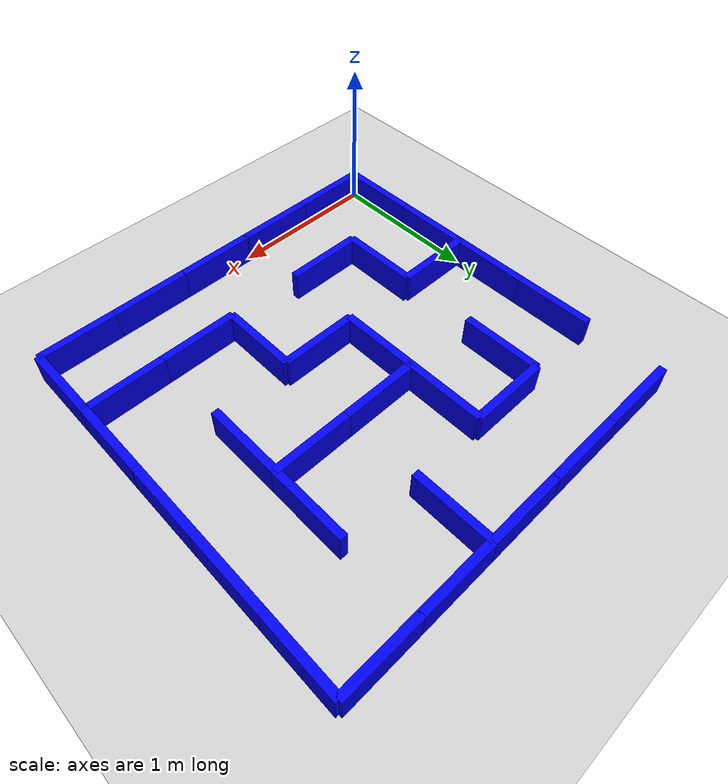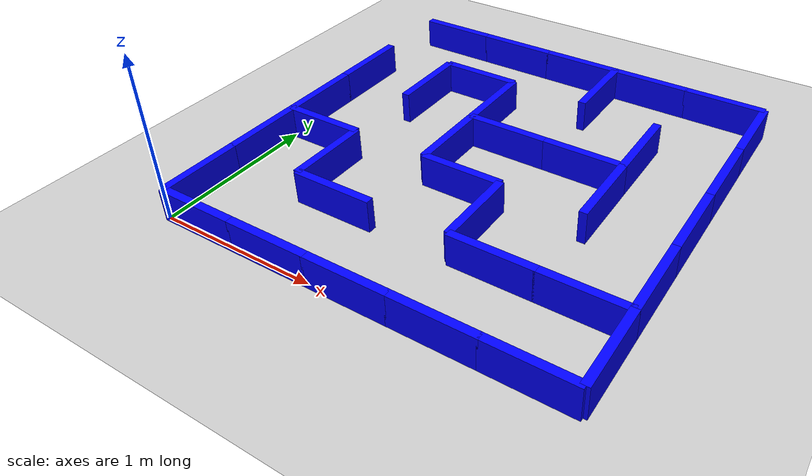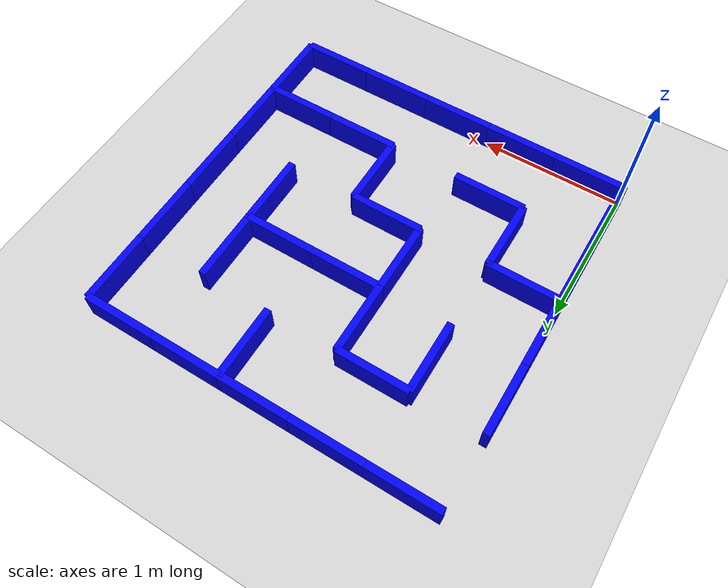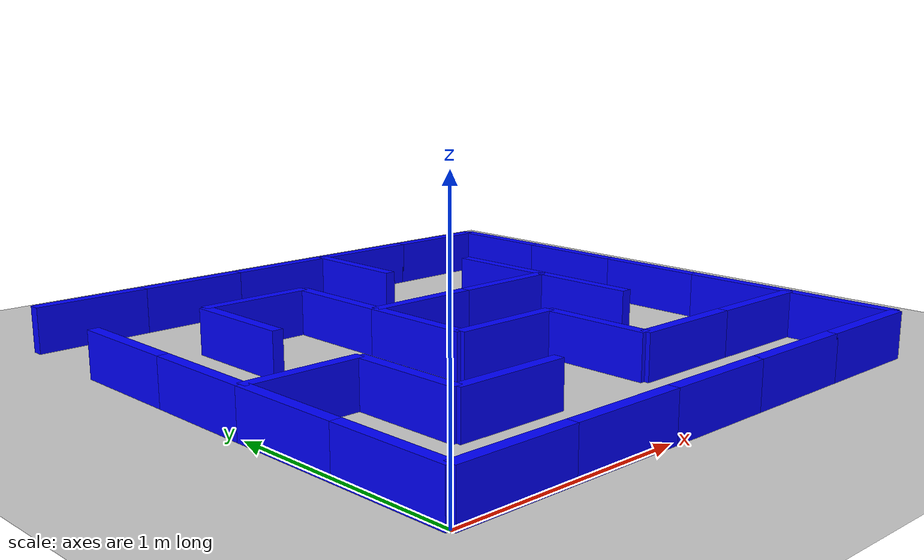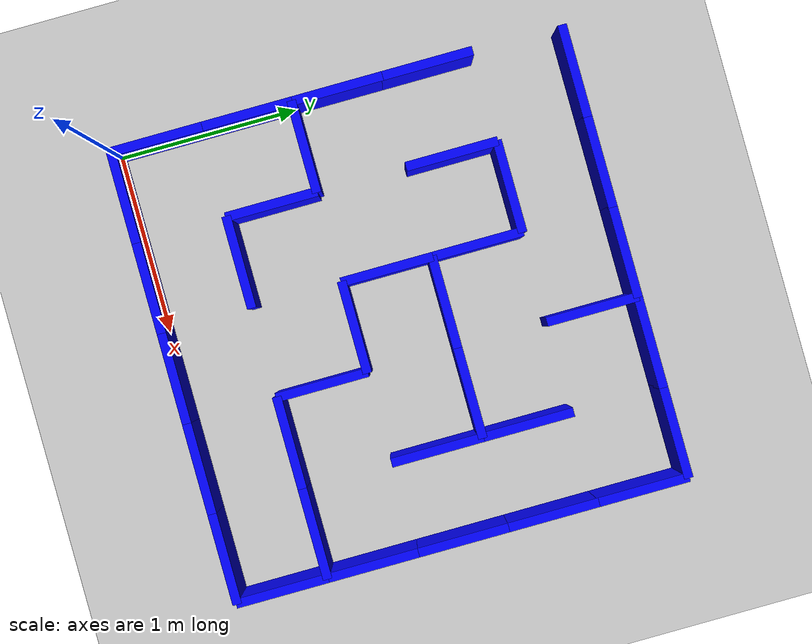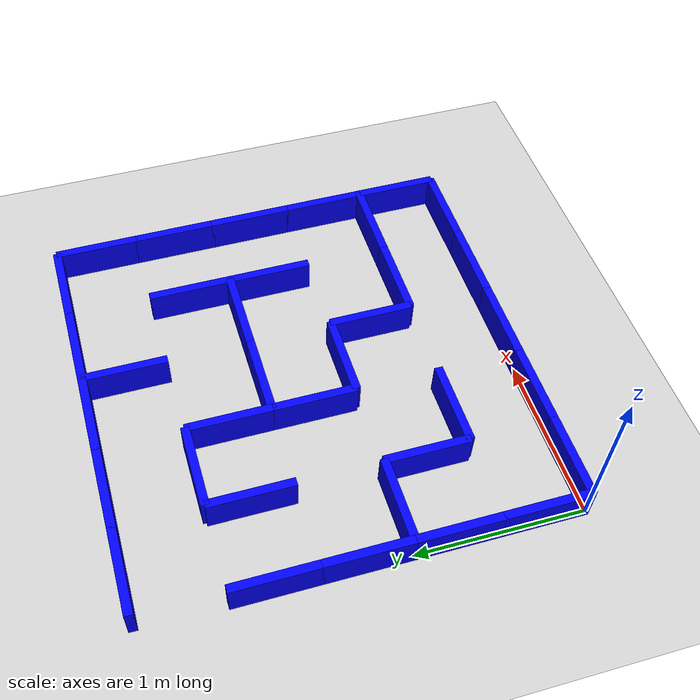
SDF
<?xml version="1.0" ?>
<sdf version="1.7">
  <world name="maze_world">
    <include><uri>model://sun</uri></include>
    <include><uri>model://ground_plane</uri></include>

    <model name='wall_0'>
      <pose>0.25 0.0 0.1 0 0 0</pose>
      <link name='link'>
        <collision name='collision'>
          <geometry><box><size>0.51 0.05 0.2</size></box></geometry>
        </collision>
        <visual name='visual'>
          <geometry><box><size>0.51 0.05 0.2</size></box></geometry>
          <material><ambient>0 0 1 1</ambient><diffuse>0 0 1 1</diffuse></material>
        </visual>
      </link>
      <static>true</static>
    </model>
    <model name='wall_1'>
      <pose>0.0 0.25 0.1 0 0 0</pose>
      <link name='link'>
        <collision name='collision'>
          <geometry><box><size>0.05 0.51 0.2</size></box></geometry>
        </collision>
        <visual name='visual'>
          <geometry><box><size>0.05 0.51 0.2</size></box></geometry>
          <material><ambient>0 0 1 1</ambient><diffuse>0 0 1 1</diffuse></material>
        </visual>
      </link>
      <static>true</static>
    </model>
    <model name='wall_2'>
      <pose>0.75 0.0 0.1 0 0 0</pose>
      <link name='link'>
        <collision name='collision'>
          <geometry><box><size>0.51 0.05 0.2</size></box></geometry>
        </collision>
        <visual name='visual'>
          <geometry><box><size>0.51 0.05 0.2</size></box></geometry>
          <material><ambient>0 0 1 1</ambient><diffuse>0 0 1 1</diffuse></material>
        </visual>
      </link>
      <static>true</static>
    </model>
    <model name='wall_3'>
      <pose>0.75 0.5 0.1 0 0 0</pose>
      <link name='link'>
        <collision name='collision'>
          <geometry><box><size>0.51 0.05 0.2</size></box></geometry>
        </collision>
        <visual name='visual'>
          <geometry><box><size>0.51 0.05 0.2</size></box></geometry>
          <material><ambient>0 0 1 1</ambient><diffuse>0 0 1 1</diffuse></material>
        </visual>
      </link>
      <static>true</static>
    </model>
    <model name='wall_4'>
      <pose>1.25 0.0 0.1 0 0 0</pose>
      <link name='link'>
        <collision name='collision'>
          <geometry><box><size>0.51 0.05 0.2</size></box></geometry>
        </collision>
        <visual name='visual'>
          <geometry><box><size>0.51 0.05 0.2</size></box></geometry>
          <material><ambient>0 0 1 1</ambient><diffuse>0 0 1 1</diffuse></material>
        </visual>
      </link>
      <static>true</static>
    </model>
    <model name='wall_5'>
      <pose>1.75 0.0 0.1 0 0 0</pose>
      <link name='link'>
        <collision name='collision'>
          <geometry><box><size>0.51 0.05 0.2</size></box></geometry>
        </collision>
        <visual name='visual'>
          <geometry><box><size>0.51 0.05 0.2</size></box></geometry>
          <material><ambient>0 0 1 1</ambient><diffuse>0 0 1 1</diffuse></material>
        </visual>
      </link>
      <static>true</static>
    </model>
    <model name='wall_6'>
      <pose>1.75 0.5 0.1 0 0 0</pose>
      <link name='link'>
        <collision name='collision'>
          <geometry><box><size>0.51 0.05 0.2</size></box></geometry>
        </collision>
        <visual name='visual'>
          <geometry><box><size>0.51 0.05 0.2</size></box></geometry>
          <material><ambient>0 0 1 1</ambient><diffuse>0 0 1 1</diffuse></material>
        </visual>
      </link>
      <static>true</static>
    </model>
    <model name='wall_7'>
      <pose>2.25 0.0 0.1 0 0 0</pose>
      <link name='link'>
        <collision name='collision'>
          <geometry><box><size>0.51 0.05 0.2</size></box></geometry>
        </collision>
        <visual name='visual'>
          <geometry><box><size>0.51 0.05 0.2</size></box></geometry>
          <material><ambient>0 0 1 1</ambient><diffuse>0 0 1 1</diffuse></material>
        </visual>
      </link>
      <static>true</static>
    </model>
    <model name='wall_8'>
      <pose>2.25 0.5 0.1 0 0 0</pose>
      <link name='link'>
        <collision name='collision'>
          <geometry><box><size>0.51 0.05 0.2</size></box></geometry>
        </collision>
        <visual name='visual'>
          <geometry><box><size>0.51 0.05 0.2</size></box></geometry>
          <material><ambient>0 0 1 1</ambient><diffuse>0 0 1 1</diffuse></material>
        </visual>
      </link>
      <static>true</static>
    </model>
    <model name='wall_9'>
      <pose>2.5 0.25 0.1 0 0 0</pose>
      <link name='link'>
        <collision name='collision'>
          <geometry><box><size>0.05 0.51 0.2</size></box></geometry>
        </collision>
        <visual name='visual'>
          <geometry><box><size>0.05 0.51 0.2</size></box></geometry>
          <material><ambient>0 0 1 1</ambient><diffuse>0 0 1 1</diffuse></material>
        </visual>
      </link>
      <static>true</static>
    </model>
    <model name='wall_10'>
      <pose>0.25 1.0 0.1 0 0 0</pose>
      <link name='link'>
        <collision name='collision'>
          <geometry><box><size>0.51 0.05 0.2</size></box></geometry>
        </collision>
        <visual name='visual'>
          <geometry><box><size>0.51 0.05 0.2</size></box></geometry>
          <material><ambient>0 0 1 1</ambient><diffuse>0 0 1 1</diffuse></material>
        </visual>
      </link>
      <static>true</static>
    </model>
    <model name='wall_11'>
      <pose>0.0 0.75 0.1 0 0 0</pose>
      <link name='link'>
        <collision name='collision'>
          <geometry><box><size>0.05 0.51 0.2</size></box></geometry>
        </collision>
        <visual name='visual'>
          <geometry><box><size>0.05 0.51 0.2</size></box></geometry>
          <material><ambient>0 0 1 1</ambient><diffuse>0 0 1 1</diffuse></material>
        </visual>
      </link>
      <static>true</static>
    </model>
    <model name='wall_12'>
      <pose>0.5 0.75 0.1 0 0 0</pose>
      <link name='link'>
        <collision name='collision'>
          <geometry><box><size>0.05 0.51 0.2</size></box></geometry>
        </collision>
        <visual name='visual'>
          <geometry><box><size>0.05 0.51 0.2</size></box></geometry>
          <material><ambient>0 0 1 1</ambient><diffuse>0 0 1 1</diffuse></material>
        </visual>
      </link>
      <static>true</static>
    </model>
    <model name='wall_13'>
      <pose>0.75 0.5 0.1 0 0 0</pose>
      <link name='link'>
        <collision name='collision'>
          <geometry><box><size>0.51 0.05 0.2</size></box></geometry>
        </collision>
        <visual name='visual'>
          <geometry><box><size>0.51 0.05 0.2</size></box></geometry>
          <material><ambient>0 0 1 1</ambient><diffuse>0 0 1 1</diffuse></material>
        </visual>
      </link>
      <static>true</static>
    </model>
    <model name='wall_14'>
      <pose>0.5 0.75 0.1 0 0 0</pose>
      <link name='link'>
        <collision name='collision'>
          <geometry><box><size>0.05 0.51 0.2</size></box></geometry>
        </collision>
        <visual name='visual'>
          <geometry><box><size>0.05 0.51 0.2</size></box></geometry>
          <material><ambient>0 0 1 1</ambient><diffuse>0 0 1 1</diffuse></material>
        </visual>
      </link>
      <static>true</static>
    </model>
    <model name='wall_15'>
      <pose>1.25 1.0 0.1 0 0 0</pose>
      <link name='link'>
        <collision name='collision'>
          <geometry><box><size>0.51 0.05 0.2</size></box></geometry>
        </collision>
        <visual name='visual'>
          <geometry><box><size>0.51 0.05 0.2</size></box></geometry>
          <material><ambient>0 0 1 1</ambient><diffuse>0 0 1 1</diffuse></material>
        </visual>
      </link>
      <static>true</static>
    </model>
    <model name='wall_16'>
      <pose>1.5 0.75 0.1 0 0 0</pose>
      <link name='link'>
        <collision name='collision'>
          <geometry><box><size>0.05 0.51 0.2</size></box></geometry>
        </collision>
        <visual name='visual'>
          <geometry><box><size>0.05 0.51 0.2</size></box></geometry>
          <material><ambient>0 0 1 1</ambient><diffuse>0 0 1 1</diffuse></material>
        </visual>
      </link>
      <static>true</static>
    </model>
    <model name='wall_17'>
      <pose>1.75 0.5 0.1 0 0 0</pose>
      <link name='link'>
        <collision name='collision'>
          <geometry><box><size>0.51 0.05 0.2</size></box></geometry>
        </collision>
        <visual name='visual'>
          <geometry><box><size>0.51 0.05 0.2</size></box></geometry>
          <material><ambient>0 0 1 1</ambient><diffuse>0 0 1 1</diffuse></material>
        </visual>
      </link>
      <static>true</static>
    </model>
    <model name='wall_18'>
      <pose>1.5 0.75 0.1 0 0 0</pose>
      <link name='link'>
        <collision name='collision'>
          <geometry><box><size>0.05 0.51 0.2</size></box></geometry>
        </collision>
        <visual name='visual'>
          <geometry><box><size>0.05 0.51 0.2</size></box></geometry>
          <material><ambient>0 0 1 1</ambient><diffuse>0 0 1 1</diffuse></material>
        </visual>
      </link>
      <static>true</static>
    </model>
    <model name='wall_19'>
      <pose>2.25 0.5 0.1 0 0 0</pose>
      <link name='link'>
        <collision name='collision'>
          <geometry><box><size>0.51 0.05 0.2</size></box></geometry>
        </collision>
        <visual name='visual'>
          <geometry><box><size>0.51 0.05 0.2</size></box></geometry>
          <material><ambient>0 0 1 1</ambient><diffuse>0 0 1 1</diffuse></material>
        </visual>
      </link>
      <static>true</static>
    </model>
    <model name='wall_20'>
      <pose>2.5 0.75 0.1 0 0 0</pose>
      <link name='link'>
        <collision name='collision'>
          <geometry><box><size>0.05 0.51 0.2</size></box></geometry>
        </collision>
        <visual name='visual'>
          <geometry><box><size>0.05 0.51 0.2</size></box></geometry>
          <material><ambient>0 0 1 1</ambient><diffuse>0 0 1 1</diffuse></material>
        </visual>
      </link>
      <static>true</static>
    </model>
    <model name='wall_21'>
      <pose>0.25 1.0 0.1 0 0 0</pose>
      <link name='link'>
        <collision name='collision'>
          <geometry><box><size>0.51 0.05 0.2</size></box></geometry>
        </collision>
        <visual name='visual'>
          <geometry><box><size>0.51 0.05 0.2</size></box></geometry>
          <material><ambient>0 0 1 1</ambient><diffuse>0 0 1 1</diffuse></material>
        </visual>
      </link>
      <static>true</static>
    </model>
    <model name='wall_22'>
      <pose>0.0 1.25 0.1 0 0 0</pose>
      <link name='link'>
        <collision name='collision'>
          <geometry><box><size>0.05 0.51 0.2</size></box></geometry>
        </collision>
        <visual name='visual'>
          <geometry><box><size>0.05 0.51 0.2</size></box></geometry>
          <material><ambient>0 0 1 1</ambient><diffuse>0 0 1 1</diffuse></material>
        </visual>
      </link>
      <static>true</static>
    </model>
    <model name='wall_23'>
      <pose>1.0 1.25 0.1 0 0 0</pose>
      <link name='link'>
        <collision name='collision'>
          <geometry><box><size>0.05 0.51 0.2</size></box></geometry>
        </collision>
        <visual name='visual'>
          <geometry><box><size>0.05 0.51 0.2</size></box></geometry>
          <material><ambient>0 0 1 1</ambient><diffuse>0 0 1 1</diffuse></material>
        </visual>
      </link>
      <static>true</static>
    </model>
    <model name='wall_24'>
      <pose>1.25 1.0 0.1 0 0 0</pose>
      <link name='link'>
        <collision name='collision'>
          <geometry><box><size>0.51 0.05 0.2</size></box></geometry>
        </collision>
        <visual name='visual'>
          <geometry><box><size>0.51 0.05 0.2</size></box></geometry>
          <material><ambient>0 0 1 1</ambient><diffuse>0 0 1 1</diffuse></material>
        </visual>
      </link>
      <static>true</static>
    </model>
    <model name='wall_25'>
      <pose>1.25 1.5 0.1 0 0 0</pose>
      <link name='link'>
        <collision name='collision'>
          <geometry><box><size>0.51 0.05 0.2</size></box></geometry>
        </collision>
        <visual name='visual'>
          <geometry><box><size>0.51 0.05 0.2</size></box></geometry>
          <material><ambient>0 0 1 1</ambient><diffuse>0 0 1 1</diffuse></material>
        </visual>
      </link>
      <static>true</static>
    </model>
    <model name='wall_26'>
      <pose>1.0 1.25 0.1 0 0 0</pose>
      <link name='link'>
        <collision name='collision'>
          <geometry><box><size>0.05 0.51 0.2</size></box></geometry>
        </collision>
        <visual name='visual'>
          <geometry><box><size>0.05 0.51 0.2</size></box></geometry>
          <material><ambient>0 0 1 1</ambient><diffuse>0 0 1 1</diffuse></material>
        </visual>
      </link>
      <static>true</static>
    </model>
    <model name='wall_27'>
      <pose>1.75 1.5 0.1 0 0 0</pose>
      <link name='link'>
        <collision name='collision'>
          <geometry><box><size>0.51 0.05 0.2</size></box></geometry>
        </collision>
        <visual name='visual'>
          <geometry><box><size>0.51 0.05 0.2</size></box></geometry>
          <material><ambient>0 0 1 1</ambient><diffuse>0 0 1 1</diffuse></material>
        </visual>
      </link>
      <static>true</static>
    </model>
    <model name='wall_28'>
      <pose>2.0 1.25 0.1 0 0 0</pose>
      <link name='link'>
        <collision name='collision'>
          <geometry><box><size>0.05 0.51 0.2</size></box></geometry>
        </collision>
        <visual name='visual'>
          <geometry><box><size>0.05 0.51 0.2</size></box></geometry>
          <material><ambient>0 0 1 1</ambient><diffuse>0 0 1 1</diffuse></material>
        </visual>
      </link>
      <static>true</static>
    </model>
    <model name='wall_29'>
      <pose>2.0 1.25 0.1 0 0 0</pose>
      <link name='link'>
        <collision name='collision'>
          <geometry><box><size>0.05 0.51 0.2</size></box></geometry>
        </collision>
        <visual name='visual'>
          <geometry><box><size>0.05 0.51 0.2</size></box></geometry>
          <material><ambient>0 0 1 1</ambient><diffuse>0 0 1 1</diffuse></material>
        </visual>
      </link>
      <static>true</static>
    </model>
    <model name='wall_30'>
      <pose>2.5 1.25 0.1 0 0 0</pose>
      <link name='link'>
        <collision name='collision'>
          <geometry><box><size>0.05 0.51 0.2</size></box></geometry>
        </collision>
        <visual name='visual'>
          <geometry><box><size>0.05 0.51 0.2</size></box></geometry>
          <material><ambient>0 0 1 1</ambient><diffuse>0 0 1 1</diffuse></material>
        </visual>
      </link>
      <static>true</static>
    </model>
    <model name='wall_31'>
      <pose>0.0 1.75 0.1 0 0 0</pose>
      <link name='link'>
        <collision name='collision'>
          <geometry><box><size>0.05 0.51 0.2</size></box></geometry>
        </collision>
        <visual name='visual'>
          <geometry><box><size>0.05 0.51 0.2</size></box></geometry>
          <material><ambient>0 0 1 1</ambient><diffuse>0 0 1 1</diffuse></material>
        </visual>
      </link>
      <static>true</static>
    </model>
    <model name='wall_32'>
      <pose>0.5 1.75 0.1 0 0 0</pose>
      <link name='link'>
        <collision name='collision'>
          <geometry><box><size>0.05 0.51 0.2</size></box></geometry>
        </collision>
        <visual name='visual'>
          <geometry><box><size>0.05 0.51 0.2</size></box></geometry>
          <material><ambient>0 0 1 1</ambient><diffuse>0 0 1 1</diffuse></material>
        </visual>
      </link>
      <static>true</static>
    </model>
    <model name='wall_33'>
      <pose>0.75 2.0 0.1 0 0 0</pose>
      <link name='link'>
        <collision name='collision'>
          <geometry><box><size>0.51 0.05 0.2</size></box></geometry>
        </collision>
        <visual name='visual'>
          <geometry><box><size>0.51 0.05 0.2</size></box></geometry>
          <material><ambient>0 0 1 1</ambient><diffuse>0 0 1 1</diffuse></material>
        </visual>
      </link>
      <static>true</static>
    </model>
    <model name='wall_34'>
      <pose>0.5 1.75 0.1 0 0 0</pose>
      <link name='link'>
        <collision name='collision'>
          <geometry><box><size>0.05 0.51 0.2</size></box></geometry>
        </collision>
        <visual name='visual'>
          <geometry><box><size>0.05 0.51 0.2</size></box></geometry>
          <material><ambient>0 0 1 1</ambient><diffuse>0 0 1 1</diffuse></material>
        </visual>
      </link>
      <static>true</static>
    </model>
    <model name='wall_35'>
      <pose>1.0 1.75 0.1 0 0 0</pose>
      <link name='link'>
        <collision name='collision'>
          <geometry><box><size>0.05 0.51 0.2</size></box></geometry>
        </collision>
        <visual name='visual'>
          <geometry><box><size>0.05 0.51 0.2</size></box></geometry>
          <material><ambient>0 0 1 1</ambient><diffuse>0 0 1 1</diffuse></material>
        </visual>
      </link>
      <static>true</static>
    </model>
    <model name='wall_36'>
      <pose>1.25 1.5 0.1 0 0 0</pose>
      <link name='link'>
        <collision name='collision'>
          <geometry><box><size>0.51 0.05 0.2</size></box></geometry>
        </collision>
        <visual name='visual'>
          <geometry><box><size>0.51 0.05 0.2</size></box></geometry>
          <material><ambient>0 0 1 1</ambient><diffuse>0 0 1 1</diffuse></material>
        </visual>
      </link>
      <static>true</static>
    </model>
    <model name='wall_37'>
      <pose>1.0 1.75 0.1 0 0 0</pose>
      <link name='link'>
        <collision name='collision'>
          <geometry><box><size>0.05 0.51 0.2</size></box></geometry>
        </collision>
        <visual name='visual'>
          <geometry><box><size>0.05 0.51 0.2</size></box></geometry>
          <material><ambient>0 0 1 1</ambient><diffuse>0 0 1 1</diffuse></material>
        </visual>
      </link>
      <static>true</static>
    </model>
    <model name='wall_38'>
      <pose>1.75 1.5 0.1 0 0 0</pose>
      <link name='link'>
        <collision name='collision'>
          <geometry><box><size>0.51 0.05 0.2</size></box></geometry>
        </collision>
        <visual name='visual'>
          <geometry><box><size>0.51 0.05 0.2</size></box></geometry>
          <material><ambient>0 0 1 1</ambient><diffuse>0 0 1 1</diffuse></material>
        </visual>
      </link>
      <static>true</static>
    </model>
    <model name='wall_39'>
      <pose>2.0 1.75 0.1 0 0 0</pose>
      <link name='link'>
        <collision name='collision'>
          <geometry><box><size>0.05 0.51 0.2</size></box></geometry>
        </collision>
        <visual name='visual'>
          <geometry><box><size>0.05 0.51 0.2</size></box></geometry>
          <material><ambient>0 0 1 1</ambient><diffuse>0 0 1 1</diffuse></material>
        </visual>
      </link>
      <static>true</static>
    </model>
    <model name='wall_40'>
      <pose>2.0 1.75 0.1 0 0 0</pose>
      <link name='link'>
        <collision name='collision'>
          <geometry><box><size>0.05 0.51 0.2</size></box></geometry>
        </collision>
        <visual name='visual'>
          <geometry><box><size>0.05 0.51 0.2</size></box></geometry>
          <material><ambient>0 0 1 1</ambient><diffuse>0 0 1 1</diffuse></material>
        </visual>
      </link>
      <static>true</static>
    </model>
    <model name='wall_41'>
      <pose>2.5 1.75 0.1 0 0 0</pose>
      <link name='link'>
        <collision name='collision'>
          <geometry><box><size>0.05 0.51 0.2</size></box></geometry>
        </collision>
        <visual name='visual'>
          <geometry><box><size>0.05 0.51 0.2</size></box></geometry>
          <material><ambient>0 0 1 1</ambient><diffuse>0 0 1 1</diffuse></material>
        </visual>
      </link>
      <static>true</static>
    </model>
    <model name='wall_42'>
      <pose>0.25 2.5 0.1 0 0 0</pose>
      <link name='link'>
        <collision name='collision'>
          <geometry><box><size>0.51 0.05 0.2</size></box></geometry>
        </collision>
        <visual name='visual'>
          <geometry><box><size>0.51 0.05 0.2</size></box></geometry>
          <material><ambient>0 0 1 1</ambient><diffuse>0 0 1 1</diffuse></material>
        </visual>
      </link>
      <static>true</static>
    </model>
    <model name='wall_43'>
      <pose>0.75 2.0 0.1 0 0 0</pose>
      <link name='link'>
        <collision name='collision'>
          <geometry><box><size>0.51 0.05 0.2</size></box></geometry>
        </collision>
        <visual name='visual'>
          <geometry><box><size>0.51 0.05 0.2</size></box></geometry>
          <material><ambient>0 0 1 1</ambient><diffuse>0 0 1 1</diffuse></material>
        </visual>
      </link>
      <static>true</static>
    </model>
    <model name='wall_44'>
      <pose>0.75 2.5 0.1 0 0 0</pose>
      <link name='link'>
        <collision name='collision'>
          <geometry><box><size>0.51 0.05 0.2</size></box></geometry>
        </collision>
        <visual name='visual'>
          <geometry><box><size>0.51 0.05 0.2</size></box></geometry>
          <material><ambient>0 0 1 1</ambient><diffuse>0 0 1 1</diffuse></material>
        </visual>
      </link>
      <static>true</static>
    </model>
    <model name='wall_45'>
      <pose>1.25 2.5 0.1 0 0 0</pose>
      <link name='link'>
        <collision name='collision'>
          <geometry><box><size>0.51 0.05 0.2</size></box></geometry>
        </collision>
        <visual name='visual'>
          <geometry><box><size>0.51 0.05 0.2</size></box></geometry>
          <material><ambient>0 0 1 1</ambient><diffuse>0 0 1 1</diffuse></material>
        </visual>
      </link>
      <static>true</static>
    </model>
    <model name='wall_46'>
      <pose>1.5 2.25 0.1 0 0 0</pose>
      <link name='link'>
        <collision name='collision'>
          <geometry><box><size>0.05 0.51 0.2</size></box></geometry>
        </collision>
        <visual name='visual'>
          <geometry><box><size>0.05 0.51 0.2</size></box></geometry>
          <material><ambient>0 0 1 1</ambient><diffuse>0 0 1 1</diffuse></material>
        </visual>
      </link>
      <static>true</static>
    </model>
    <model name='wall_47'>
      <pose>1.75 2.5 0.1 0 0 0</pose>
      <link name='link'>
        <collision name='collision'>
          <geometry><box><size>0.51 0.05 0.2</size></box></geometry>
        </collision>
        <visual name='visual'>
          <geometry><box><size>0.51 0.05 0.2</size></box></geometry>
          <material><ambient>0 0 1 1</ambient><diffuse>0 0 1 1</diffuse></material>
        </visual>
      </link>
      <static>true</static>
    </model>
    <model name='wall_48'>
      <pose>1.5 2.25 0.1 0 0 0</pose>
      <link name='link'>
        <collision name='collision'>
          <geometry><box><size>0.05 0.51 0.2</size></box></geometry>
        </collision>
        <visual name='visual'>
          <geometry><box><size>0.05 0.51 0.2</size></box></geometry>
          <material><ambient>0 0 1 1</ambient><diffuse>0 0 1 1</diffuse></material>
        </visual>
      </link>
      <static>true</static>
    </model>
    <model name='wall_49'>
      <pose>2.25 2.5 0.1 0 0 0</pose>
      <link name='link'>
        <collision name='collision'>
          <geometry><box><size>0.51 0.05 0.2</size></box></geometry>
        </collision>
        <visual name='visual'>
          <geometry><box><size>0.51 0.05 0.2</size></box></geometry>
          <material><ambient>0 0 1 1</ambient><diffuse>0 0 1 1</diffuse></material>
        </visual>
      </link>
      <static>true</static>
    </model>
    <model name='wall_50'>
      <pose>2.5 2.25 0.1 0 0 0</pose>
      <link name='link'>
        <collision name='collision'>
          <geometry><box><size>0.05 0.51 0.2</size></box></geometry>
        </collision>
        <visual name='visual'>
          <geometry><box><size>0.05 0.51 0.2</size></box></geometry>
          <material><ambient>0 0 1 1</ambient><diffuse>0 0 1 1</diffuse></material>
        </visual>
      </link>
      <static>true</static>
    </model></world>
</sdf>
